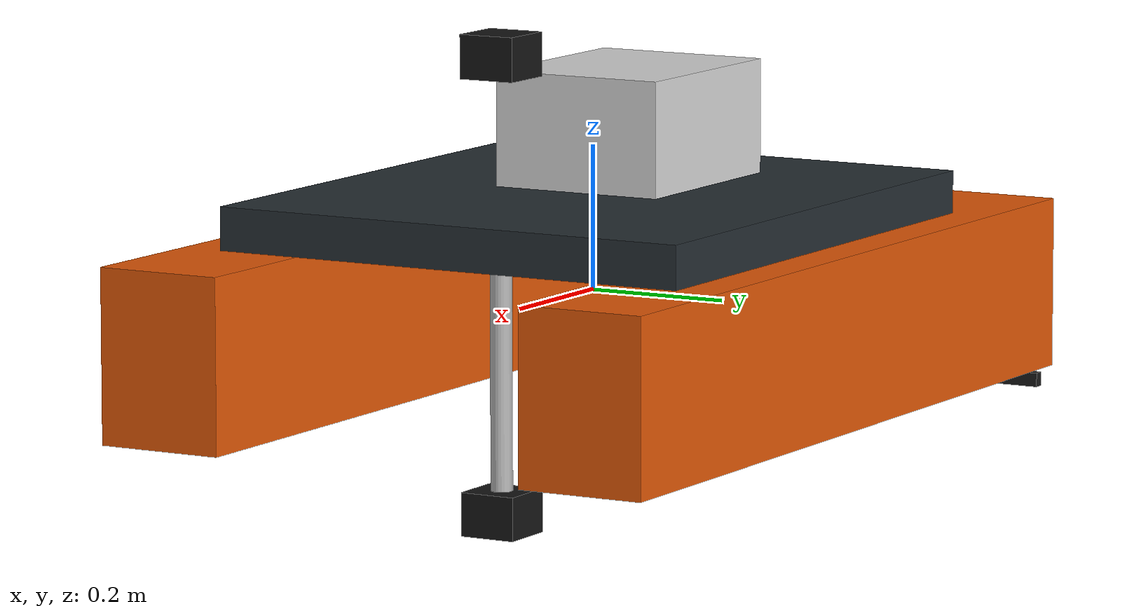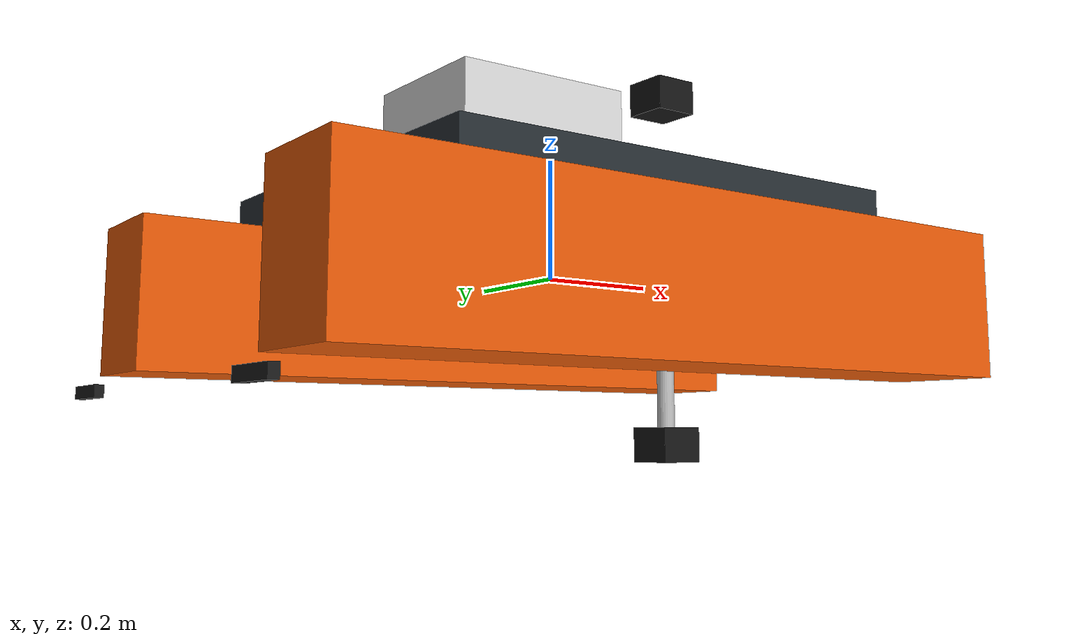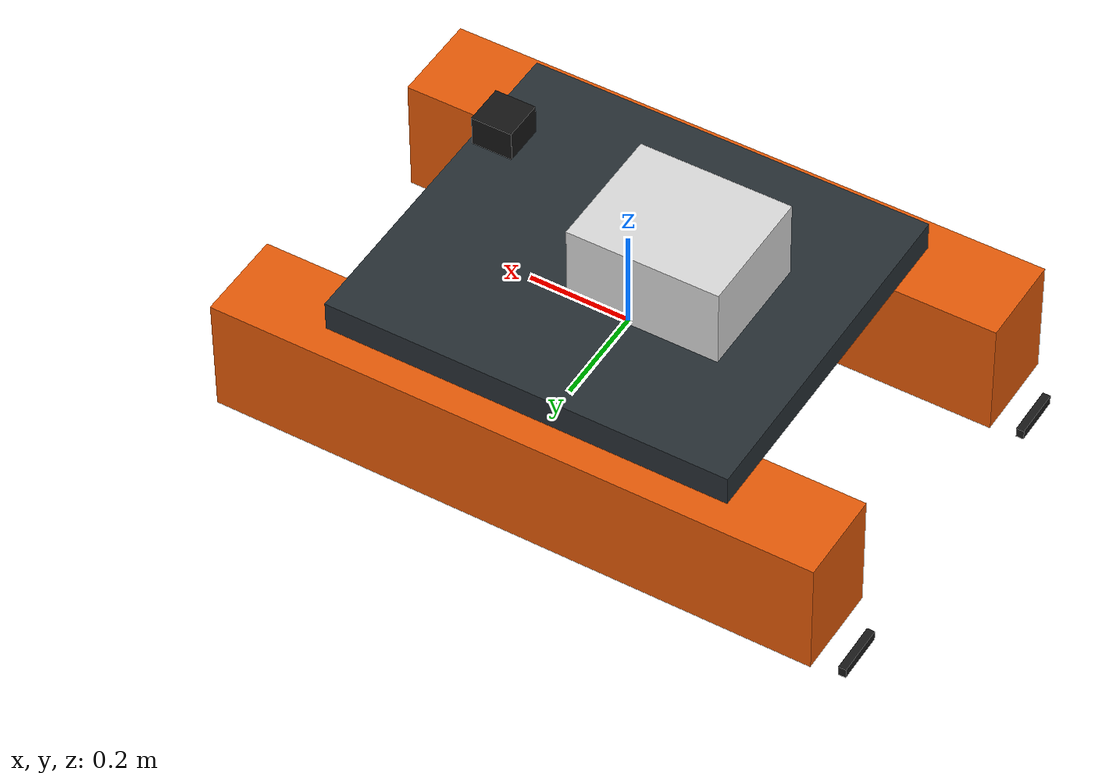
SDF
<?xml version="1.0"?>
<sdf version="1.9">
  <!-- FLU: +X forward, +Y port, +Z up. Dimensions in metres.
       Requires world-level graded buoyancy at z=0; see README.md.
       Prototype mass/drag values, not a calibrated vessel. -->
  <model name="fish_usv">
    <static>false</static>
    <self_collide>false</self_collide>
    <link name="base_link">
      <!-- 12 kg hull/payload; thrusters add 0.4 kg.
           Two 1.2 x 0.18 m waterplanes give ~0.029 m freshwater draft.
           At rest base_link is approximately z=0.131 m. -->
      <inertial>
        <pose>0 0 -0.04 0 0 0</pose>
        <mass>12</mass>
        <inertia>
          <ixx>0.9</ixx><ixy>0</ixy><ixz>0</ixz>
          <iyy>1.5</iyy><iyz>0</iyz><izz>2.2</izz>
        </inertia>
      </inertial>
      <collision name="port_hull_collision_0">
        <pose>-0.525 0.32 -0.04 0 0 0</pose>
        <geometry><box><size>0.15 0.18 0.24</size></box></geometry>
      </collision>
      <collision name="port_hull_collision_1">
        <pose>-0.375 0.32 -0.04 0 0 0</pose>
        <geometry><box><size>0.15 0.18 0.24</size></box></geometry>
      </collision>
      <collision name="port_hull_collision_2">
        <pose>-0.225 0.32 -0.04 0 0 0</pose>
        <geometry><box><size>0.15 0.18 0.24</size></box></geometry>
      </collision>
      <collision name="port_hull_collision_3">
        <pose>-0.075 0.32 -0.04 0 0 0</pose>
        <geometry><box><size>0.15 0.18 0.24</size></box></geometry>
      </collision>
      <collision name="port_hull_collision_4">
        <pose>0.075 0.32 -0.04 0 0 0</pose>
        <geometry><box><size>0.15 0.18 0.24</size></box></geometry>
      </collision>
      <collision name="port_hull_collision_5">
        <pose>0.225 0.32 -0.04 0 0 0</pose>
        <geometry><box><size>0.15 0.18 0.24</size></box></geometry>
      </collision>
      <collision name="port_hull_collision_6">
        <pose>0.375 0.32 -0.04 0 0 0</pose>
        <geometry><box><size>0.15 0.18 0.24</size></box></geometry>
      </collision>
      <collision name="port_hull_collision_7">
        <pose>0.525 0.32 -0.04 0 0 0</pose>
        <geometry><box><size>0.15 0.18 0.24</size></box></geometry>
      </collision>
      <visual name="port_hull_visual">
        <pose>0 0.32 -0.04 0 0 0</pose>
        <geometry><box><size>1.2 0.18 0.24</size></box></geometry>
        <material><ambient>0.9 0.35 0.03 1</ambient><diffuse>0.9 0.35 0.03 1</diffuse></material>
      </visual>
      <collision name="starboard_hull_collision_0">
        <pose>-0.525 -0.32 -0.04 0 0 0</pose>
        <geometry><box><size>0.15 0.18 0.24</size></box></geometry>
      </collision>
      <collision name="starboard_hull_collision_1">
        <pose>-0.375 -0.32 -0.04 0 0 0</pose>
        <geometry><box><size>0.15 0.18 0.24</size></box></geometry>
      </collision>
      <collision name="starboard_hull_collision_2">
        <pose>-0.225 -0.32 -0.04 0 0 0</pose>
        <geometry><box><size>0.15 0.18 0.24</size></box></geometry>
      </collision>
      <collision name="starboard_hull_collision_3">
        <pose>-0.075 -0.32 -0.04 0 0 0</pose>
        <geometry><box><size>0.15 0.18 0.24</size></box></geometry>
      </collision>
      <collision name="starboard_hull_collision_4">
        <pose>0.075 -0.32 -0.04 0 0 0</pose>
        <geometry><box><size>0.15 0.18 0.24</size></box></geometry>
      </collision>
      <collision name="starboard_hull_collision_5">
        <pose>0.225 -0.32 -0.04 0 0 0</pose>
        <geometry><box><size>0.15 0.18 0.24</size></box></geometry>
      </collision>
      <collision name="starboard_hull_collision_6">
        <pose>0.375 -0.32 -0.04 0 0 0</pose>
        <geometry><box><size>0.15 0.18 0.24</size></box></geometry>
      </collision>
      <collision name="starboard_hull_collision_7">
        <pose>0.525 -0.32 -0.04 0 0 0</pose>
        <geometry><box><size>0.15 0.18 0.24</size></box></geometry>
      </collision>
      <visual name="starboard_hull_visual">
        <pose>0 -0.32 -0.04 0 0 0</pose>
        <geometry><box><size>1.2 0.18 0.24</size></box></geometry>
        <material><ambient>0.9 0.35 0.03 1</ambient><diffuse>0.9 0.35 0.03 1</diffuse></material>
      </visual>
      <collision name="deck_collision">
        <pose>0 0 0.11 0 0 0</pose>
        <geometry><box><size>0.8 0.7 0.06</size></box></geometry>
      </collision>
      <visual name="deck_visual">
        <pose>0 0 0.11 0 0 0</pose>
        <geometry><box><size>0.8 0.7 0.06</size></box></geometry>
        <material><ambient>0.15 0.18 0.2 1</ambient><diffuse>0.15 0.18 0.2 1</diffuse></material>
      </visual>
      <visual name="electronics_enclosure">
        <pose>-0.1 0 0.22 0 0 0</pose>
        <geometry><box><size>0.3 0.25 0.16</size></box></geometry>
        <material><ambient>0.85 0.85 0.85 1</ambient><diffuse>0.85 0.85 0.85 1</diffuse></material>
      </visual>
      <visual name="camera_mount">
        <pose>0.25 0 -0.08 0 0 0</pose>
        <geometry><cylinder><radius>0.015</radius><length>0.38</length></cylinder></geometry>
      </visual>
      <visual name="camera_housing">
        <pose>0.25 0 -0.27 0 0 0</pose>
        <geometry><box><size>0.08 0.08 0.06</size></box></geometry>
        <material><ambient>0.08 0.08 0.08 1</ambient><diffuse>0.08 0.08 0.08 1</diffuse></material>
      </visual>
      <!-- Camera +X optical axis is rotated toward -Z.
           Lens is below its housing and between the hulls. Default scoped
           Gazebo topics allow multiple instances without image collisions. -->
      <sensor name="fish_camera" type="camera">
        <pose>0.25 0 -0.305 0 1.57079632679 0</pose>
        <always_on>true</always_on>
        <update_rate>20</update_rate>
        <camera>
          <horizontal_fov>1.3962634</horizontal_fov>
          <image><width>1280</width><height>720</height><format>R8G8B8</format></image>
          <clip><near>0.03</near><far>20</far></clip>
        </camera>
      </sensor>
      <!-- Forward camera: edit this pose (x y z roll pitch yaw) to move or
           aim it relative to base_link. Its optical axis is local +X. -->
      <visual name="forward_camera_housing">
        <pose>0.25 0 0.35 0 0 0</pose>
        <geometry><box><size>0.08 0.08 0.06</size></box></geometry>
        <material><ambient>0.08 0.08 0.08 1</ambient><diffuse>0.08 0.08 0.08 1</diffuse></material>
      </visual>
      <sensor name="forward_camera" type="camera">
        <pose>0.30 0 0.35 0 0 0</pose>
        <always_on>true</always_on>
        <update_rate>20</update_rate>
        <camera>
          <horizontal_fov>1.3962634</horizontal_fov>
          <image><width>1280</width><height>720</height><format>R8G8B8</format></image>
          <clip><near>0.03</near><far>100</far></clip>
        </camera>
      </sensor>
      <!--Sensors-->
      <sensor name="air_pressure_sensor" type="air_pressure">
        <gz_frame_id>base_link</gz_frame_id>
        <always_on>1</always_on>
        <update_rate>50</update_rate>
        <air_pressure>
          <!-- Noise modeled after BMP390 -->
          <pressure>
            <noise type="gaussian">
              <mean>0</mean>
              <stddev>3</stddev>
            </noise>
          </pressure>
        </air_pressure>
      </sensor>
      <sensor name="magnetometer_sensor" type="magnetometer">
        <gz_frame_id>base_link</gz_frame_id>
        <always_on>1</always_on>
        <update_rate>100</update_rate>
        <magnetometer>
          <!-- TODO: update to fix units and coordinate system when we move past Harmonic -->
          <!-- See https://github.com/gazebosim/gz-sim/pull/2460 -->
          <!-- 3mgauss RMS: NOTE: noise is in tesla but sensor reports data in gauss -->
          <!-- Noise modeled after IIS2MDC -->
          <x>
            <noise type="gaussian">
              <stddev>0.0001</stddev>
            </noise>
          </x>
          <y>
            <noise type="gaussian">
              <stddev>0.0001</stddev>
            </noise>
          </y>
          <z>
            <noise type="gaussian">
              <stddev>0.0001</stddev>
            </noise>
          </z>
        </magnetometer>
      </sensor>
      <sensor name="imu_sensor" type="imu">
        <gz_frame_id>base_link</gz_frame_id>
        <always_on>1</always_on>
        <update_rate>250</update_rate>
        <imu>
          <angular_velocity>
            <!-- Noise modeled after IIM42653 -->
            <!-- 0.05 deg/s converted to rad/s -->
            <x>
              <noise type="gaussian">
                <mean>0.0</mean>
                <stddev>0.0008726646</stddev>
              </noise>
            </x>
            <y>
              <noise type="gaussian">
                <mean>0.0</mean>
                <stddev>0.0008726646</stddev>
              </noise>
            </y>
            <z>
              <noise type="gaussian">
                <mean>0.0</mean>
                <stddev>0.0008726646</stddev>
              </noise>
            </z>
          </angular_velocity>
          <linear_acceleration>
            <!-- Noise modeled after IIM42653 -->
            <!-- X & Y axis: 0.65 mg-rms converted to m/ss -->
            <x>
              <noise type="gaussian">
                <mean>0.0</mean>
                <stddev>0.00637</stddev>
              </noise>
            </x>
            <y>
              <noise type="gaussian">
                <mean>0.0</mean>
                <stddev>0.00637</stddev>
              </noise>
            </y>
            <!-- Z axis: 0.70 mg-rms converted to m/ss-->
            <z>
              <noise type="gaussian">
                <mean>0.0</mean>
                <stddev>0.00686</stddev>
              </noise>
            </z>
          </linear_acceleration>
        </imu>
      </sensor>
      <sensor name="navsat_sensor" type="navsat">
        <gz_frame_id>base_link</gz_frame_id>
        <always_on>1</always_on>
        <update_rate>30</update_rate>
      </sensor>
    </link>

    <link name="port_propeller_link">
      <!-- The GenericMotorModel applies thrust along this link's local +Z.
           Pitching it +90 degrees makes +Z point forward (+X). -->
      <pose relative_to="base_link">-0.64 0.32 -0.19 0 1.57079632679 0</pose>
      <inertial>
        <mass>0.2</mass>
        <inertia>
          <ixx>0.00025</ixx><ixy>0</ixy><ixz>0</ixz>
          <iyy>0.00014</iyy><iyz>0</iyz><izz>0.00014</izz>
        </inertia>
      </inertial>
      <visual name="propeller_visual">
        <geometry><box><size>0.02 0.1 0.015</size></box></geometry>
        <material><ambient>0.1 0.1 0.1 1</ambient><diffuse>0.1 0.1 0.1 1</diffuse></material>
      </visual>
    </link>
    <joint name="port_propeller_joint" type="revolute">
      <parent>base_link</parent>
      <child>port_propeller_link</child>
      <axis><xyz>0 0 1</xyz></axis>
    </joint>
    <!-- PX4 sends an Actuators message on command/motor_speed. The model
         instance name scopes this to /fish_usv_0/command/motor_speed. -->
    <plugin filename="libGenericMotorModelPlugin.so" name="gz::sim::systems::GenericMotorModel">
      <jointName>port_propeller_joint</jointName>
      <linkName>port_propeller_link</linkName>
      <actuator_number>1</actuator_number>
      <turningDirection>ccw</turningDirection>
      <timeConstantUp>0.05</timeConstantUp>
      <timeConstantDown>0.10</timeConstantDown>
      <commandSubTopic>command/motor_speed</commandSubTopic>
      <rotorVelocitySlowdownSim>0.025</rotorVelocitySlowdownSim>
      <motorType>force_polynomial</motorType>
      <controlMethod>duty_cycle</controlMethod>
      <minCommand>0.02</minCommand>
      <minDutyCycle>1000</minDutyCycle>
      <maxDutyCycle>2000</maxDutyCycle>
      <bidirectionalMotor>1</bidirectionalMotor>
      <positiveThrustPolynomial>[0.0, 12.0, 0.0, 0.0]</positiveThrustPolynomial>
      <negativeThrustPolynomial>[0.0, 9.0, 0.0, 0.0]</negativeThrustPolynomial>
    </plugin>

    <link name="starboard_propeller_link">
      <pose relative_to="base_link">-0.64 -0.32 -0.19 0 1.57079632679 0</pose>
      <inertial>
        <mass>0.2</mass>
        <inertia>
          <ixx>0.00025</ixx><ixy>0</ixy><ixz>0</ixz>
          <iyy>0.00014</iyy><iyz>0</iyz><izz>0.00014</izz>
        </inertia>
      </inertial>
      <visual name="propeller_visual">
        <geometry><box><size>0.02 0.1 0.015</size></box></geometry>
        <material><ambient>0.1 0.1 0.1 1</ambient><diffuse>0.1 0.1 0.1 1</diffuse></material>
      </visual>
    </link>
    <joint name="starboard_propeller_joint" type="revolute">
      <parent>base_link</parent>
      <child>starboard_propeller_link</child>
      <axis><xyz>0 0 1</xyz></axis>
    </joint>
    <plugin filename="libGenericMotorModelPlugin.so" name="gz::sim::systems::GenericMotorModel">
      <jointName>starboard_propeller_joint</jointName>
      <linkName>starboard_propeller_link</linkName>
      <actuator_number>0</actuator_number>
      <turningDirection>cw</turningDirection>
      <timeConstantUp>0.05</timeConstantUp>
      <timeConstantDown>0.10</timeConstantDown>
      <commandSubTopic>command/motor_speed</commandSubTopic>
      <rotorVelocitySlowdownSim>0.025</rotorVelocitySlowdownSim>
      <motorType>force_polynomial</motorType>
      <controlMethod>duty_cycle</controlMethod>
      <minCommand>0.02</minCommand>
      <minDutyCycle>1000</minDutyCycle>
      <maxDutyCycle>2000</maxDutyCycle>
      <bidirectionalMotor>1</bidirectionalMotor>
      <positiveThrustPolynomial>[0.0, 12.0, 0.0, 0.0]</positiveThrustPolynomial>
      <negativeThrustPolynomial>[0.0, 9.0, 0.0, 0.0]</negativeThrustPolynomial>
    </plugin>

    <plugin filename="gz-sim-hydrodynamics-system" name="gz::sim::systems::Hydrodynamics">
      <link_name>base_link</link_name>
      <xU>-8</xU><yV>-25</yV><zW>-40</zW>
      <kP>-3</kP><mQ>-6</mQ><nR>-5</nR>
      <xUabsU>-12</xUabsU><yVabsV>-40</yVabsV><zWabsW>-60</zWabsW>
      <kPabsP>-2</kPabsP><mQabsQ>-5</mQabsQ><nRabsR>-8</nRabsR>
    </plugin>
  </model>
</sdf>
